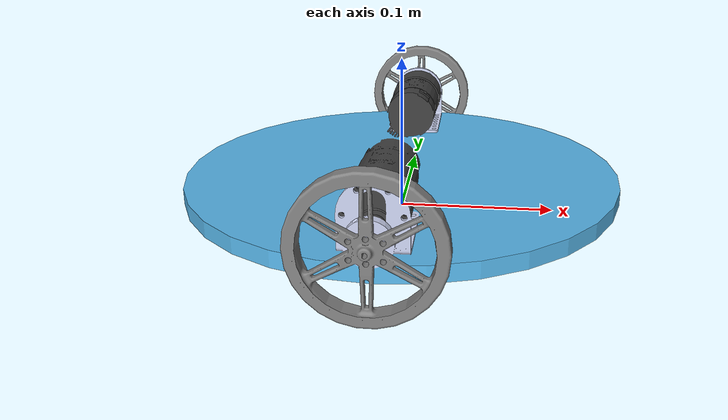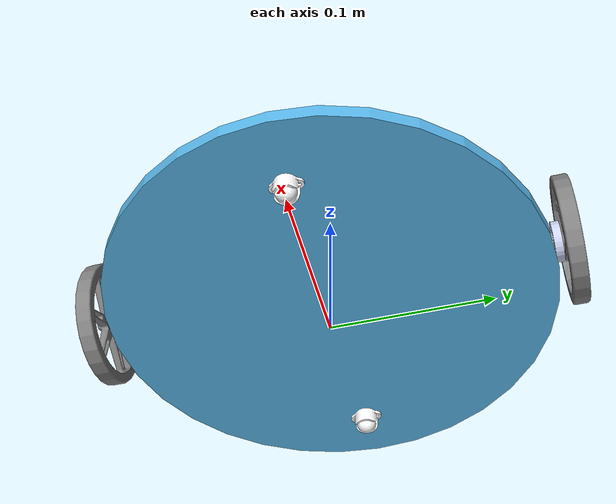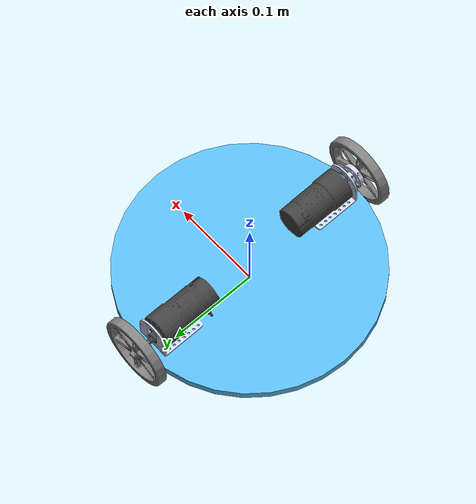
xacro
<?xml version="1.0"?>
<robot xmlns:xacro="http://www.ros.org/wiki/xacro" name="clownbot">
  <xacro:arg name="cmd_topic" default="/cmd_vel"/>
  <xacro:arg name="odom_topic" default="/odom"/>
  <xacro:arg name="odom_frame" default="odom"/>

  <xacro:include filename="$(find clownbot_description)/urdf/common.xacro"/>
  <xacro:include filename="$(find clownbot_description)/urdf/base/base.xacro"/>
  <xacro:include filename="$(find clownbot_description)/urdf/wheels/wheel.xacro"/>
  <xacro:include filename="$(find clownbot_description)/urdf/wheels/caster.xacro"/>

  <xacro:property name="base_to_wheel_offset_y" value="0.15"/>
  <xacro:property name="base_to_caster_offset_x" value="0.1"/>
  <xacro:property name="base_to_caster_offset_z" value="${wheel_radius - caster_radius}"/>

  <link name="base_footprint"/>

  <xacro:base name="base_link" parent="base_footprint">
    <origin xyz="0 0 ${wheel_radius}" rpy="0 0 0"/>
  </xacro:base>

  <xacro:right_wheel name="right_wheel" parent="base_link">
    <origin xyz="0 ${-1 * base_to_wheel_offset_y} 0" rpy="0 0 0"/>
  </xacro:right_wheel>

  <xacro:left_wheel name="left_wheel" parent="base_link">
    <origin xyz="0 ${base_to_wheel_offset_y} 0" rpy="0 0 0"/>
  </xacro:left_wheel>

  <xacro:caster name="front_caster" parent="base_link">
    <origin xyz="${base_to_caster_offset_x} 0 ${-1 * base_to_caster_offset_z}" rpy="0 0 0"/>
  </xacro:caster>

  <xacro:caster name="back_caster" parent="base_link">
    <origin xyz="${-1 * base_to_caster_offset_x} 0 ${-1 * base_to_caster_offset_z}" rpy="0 0 0"/>
  </xacro:caster>

  <gazebo>
    <plugin name="differential_drive_controller" filename="libgazebo_ros_diff_drive.so">
      <updateRate>20</updateRate>
      <leftJoint>base_link_to_left_wheel</leftJoint>
      <rightJoint>base_link_to_right_wheel</rightJoint>
      <wheelSeparation>${2 * base_to_wheel_offset_y}</wheelSeparation>
      <wheelDiameter>${2 * wheel_radius}</wheelDiameter>
      <wheelAcceleration>1.0</wheelAcceleration>
      <wheelTorque>20</wheelTorque>
      <commandTopic>$(arg cmd_topic)</commandTopic>
      <odometryTopic>$(arg odom_topic)</odometryTopic>
      <odometryFrame>$(arg odom_frame)</odometryFrame>
      <robotBaseFrame>base_footprint</robotBaseFrame>
      <odometrySource>world</odometrySource>
      <publishWheelTF>false</publishWheelTF>
      <publishOdomTF>true</publishOdomTF>
      <publishTf>1</publishTf>
      <publishWheelJointState>false</publishWheelJointState>
      <legacyMode>false</legacyMode>
      <rosDebugLevel>warn</rosDebugLevel>
    </plugin>
  </gazebo>
</robot>

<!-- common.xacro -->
<robot xmlns:xacro="http://www.ros.org/wiki/xacro">
  <!-- constants -->
  <xacro:property name="PI" value="3.1415926535897931"/>
  <xacro:property name="HALF_PI" value="${PI / 2}"/>

  <!-- inertia -->
  <xacro:macro name="box_inertia" params="m w h d">
    <inertial>
      <mass value="${m}"/>
      <inertia ixx="${m * (h*h + d*d) / 12}" ixy = "0.0" ixz = "0.0"
              iyy="${m * (w*w + d*d) / 12}" iyz = "0.0" izz="${m * (w*w + h*h) / 12}"/>
    </inertial>
  </xacro:macro>

  <xacro:macro name="cylinder_inertia" params="m r h">
    <inertial>
      <mass value="${m}"/>
      <inertia ixx="${m * (3*r*r + h*h) / 12}" ixy = "0.0" ixz = "0.0"
              iyy="${m * (3*r*r + h*h) / 12}" iyz = "0.0" izz="${m*r*r / 2}"/>
    </inertial>
  </xacro:macro>

  <xacro:macro name="sphere_inertia" params="m r">
    <inertial>
      <mass value="${m}"/>
      <inertia ixx="${2 * (m*r*r) / 5}" ixy = "0.0" ixz = "0.0"
               iyy="${2 * (m*r*r) / 5}" iyz = "0.0" izz="${2 * (m*r*r) / 5}"/>
    </inertial>
  </xacro:macro>
</robot>

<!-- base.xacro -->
<robot xmlns:xacro="http://www.ros.org/wiki/xacro">
  <xacro:property name="base_height" value="0.06"/>
  <xacro:property name="base_radius" value="0.15"/>
  <xacro:property name="base_mass" value="5"/>

  <xacro:macro name="base" params="name parent *origin">
    <joint name="${parent}_to_${name}" type="fixed">
      <parent link="${parent}"/>
      <child link="${name}"/>
      <xacro:insert_block name="origin"/>
    </joint>

    <link name="${name}">
      <visual>
        <origin xyz="0 0 0" rpy="0 0 0"/>
        <geometry>
          <mesh filename="package://clownbot_description/meshes/base.dae"/>
        </geometry>
      </visual>

      <collision>
        <origin xyz="0 0 0" rpy="0 0 0"/>
        <geometry>
          <cylinder length="${base_height}" radius="${base_radius}"/>
        </geometry>
      </collision>

      <xacro:cylinder_inertia m="${base_mass}" r="${base_radius}" h="${base_height}"/>
    </link>
  </xacro:macro>
</robot>

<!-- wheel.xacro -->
<robot xmlns:xacro="http://www.ros.org/wiki/xacro">
  <xacro:property name="wheel_width" value="0.01"/>
  <xacro:property name="wheel_radius" value="0.04"/>
  <xacro:property name="wheel_mass" value="0.1"/>

  <xacro:macro name="wheel" params="name parent *origin *visual">
    <joint name="${parent}_to_${name}" type="continuous">
      <parent link="${parent}"/>
      <child link="${name}"/>
      <xacro:insert_block name="origin"/>
      <axis xyz="0 1 0"/>
    </joint>

    <link name="${name}">
      <xacro:insert_block name="visual"/>

      <collision>
        <origin xyz="0 0 0" rpy="${HALF_PI} 0 0"/>
        <geometry>
          <cylinder length="${wheel_width}" radius="${wheel_radius}"/>
        </geometry>
      </collision>

      <xacro:cylinder_inertia m="${wheel_mass}" r="${wheel_radius}" h="${wheel_width}"/>
    </link>

    <gazebo reference="${name}">
      <mu1>100000.0</mu1>
      <mu2>100000.0</mu2>
      <kp>1000000.0</kp>
      <kd>1.0</kd>
    </gazebo>
  </xacro:macro>

  <xacro:macro name="left_wheel" params="name parent *origin">
    <xacro:wheel name="${name}" parent="${parent}">
      <xacro:insert_block name="origin"/>

      <visual>
        <origin xyz="0 0 0" rpy="0 0 -${HALF_PI}"/>
        <geometry>
          <mesh filename="package://clownbot_description/meshes/wheel.dae"/>
        </geometry>
      </visual>
    </xacro:wheel>
  </xacro:macro>

  <xacro:macro name="right_wheel" params="name parent *origin">
    <xacro:wheel name="${name}" parent="${parent}">
      <xacro:insert_block name="origin"/>

      <visual>
        <origin xyz="0 0 0" rpy="0 0 ${HALF_PI}"/>
        <geometry>
          <mesh filename="package://clownbot_description/meshes/wheel.dae"/>
        </geometry>
      </visual>
    </xacro:wheel>
  </xacro:macro>
</robot>

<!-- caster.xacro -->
<robot xmlns:xacro="http://www.ros.org/wiki/xacro">
  <xacro:property name="caster_radius" value="0.00635"/>
  <xacro:property name="caster_mass" value="0.01"/>

  <xacro:macro name="caster" params="name parent *origin">
    <joint name="${parent}_to_${name}" type="fixed">
      <parent link="${parent}"/>
      <child link="${name}"/>
      <xacro:insert_block name="origin"/>
    </joint>

    <link name="${name}">
      <visual>
        <origin xyz="0 0 ${caster_radius - 0.001}" rpy="0 ${PI} ${HALF_PI}"/>
        <geometry>
          <mesh filename="package://clownbot_description/meshes/caster.dae"/>
        </geometry>
      </visual>

      <collision>
        <geometry>
          <sphere radius="${caster_radius}"/>
        </geometry>
      </collision>

      <xacro:sphere_inertia m="${caster_mass}" r="${caster_radius}"/>
    </link>
  </xacro:macro>
</robot>
